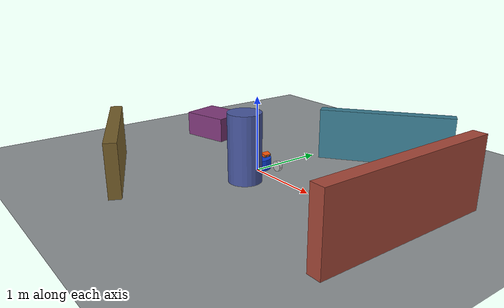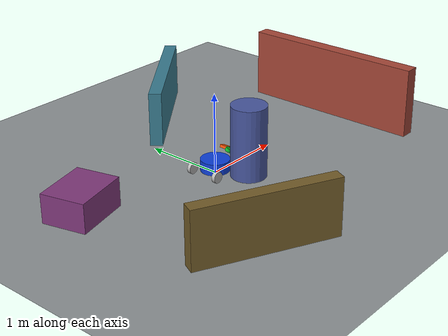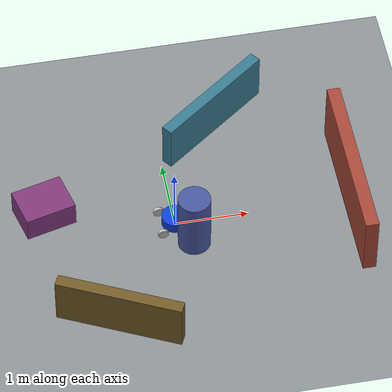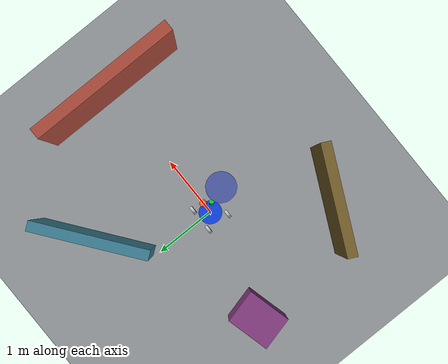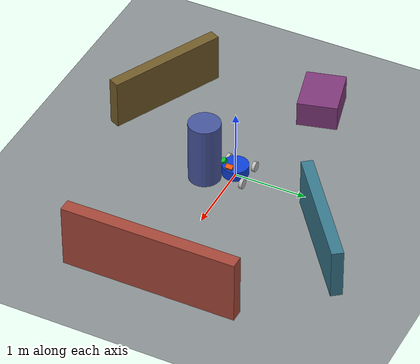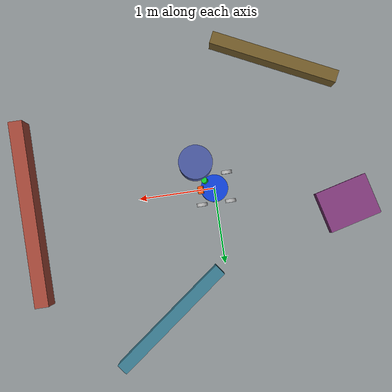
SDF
<?xml version="1.0" ?>
<sdf version="1.9">
  <world name="omni_harmonic_demo">
    <physics name="fast_step" type="ignored">
      <max_step_size>0.002</max_step_size>
      <real_time_factor>1.0</real_time_factor>
    </physics>

    <plugin filename="gz-sim-physics-system" name="gz::sim::systems::Physics"/>
    <plugin filename="gz-sim-user-commands-system" name="gz::sim::systems::UserCommands"/>
    <plugin filename="gz-sim-scene-broadcaster-system" name="gz::sim::systems::SceneBroadcaster"/>
    <plugin filename="gz-sim-sensors-system" name="gz::sim::systems::Sensors">
      <render_engine>ogre2</render_engine>
    </plugin>
    <plugin filename="gz-sim-imu-system" name="gz::sim::systems::Imu"/>

    <!-- Keep terrain readable on faces that are not reached by the sun. -->
    <scene>
      <ambient>0.45 0.45 0.45 1</ambient>
      <background>0.70 0.75 0.80 1</background>
      <shadows>true</shadows>
    </scene>

    <light type="directional" name="sun">
      <pose>0 0 8 0 0 0</pose>
      <cast_shadows>true</cast_shadows>
      <diffuse>0.9 0.9 0.85 1</diffuse>
      <specular>0.2 0.2 0.2 1</specular>
      <direction>-0.4 0.3 -0.9</direction>
    </light>

    <model name="ground_plane">
      <static>true</static>
      <link name="link">
        <collision name="collision">
          <geometry>
            <plane>
              <normal>0 0 1</normal>
              <size>18 18</size>
            </plane>
          </geometry>
          <surface>
            <friction>
              <ode>
                <mu>20</mu>
                <mu2>20</mu2>
              </ode>
            </friction>
          </surface>
        </collision>
        <visual name="visual">
          <geometry>
            <plane>
              <normal>0 0 1</normal>
              <size>18 18</size>
            </plane>
          </geometry>
          <material>
            <ambient>0.55 0.57 0.58 1</ambient>
            <diffuse>0.55 0.57 0.58 1</diffuse>
          </material>
        </visual>
      </link>
    </model>

    <model name="box_wall_front">
      <static>true</static>
      <pose>2.4 0 0.45 0 0 0</pose>
      <link name="link">
        <collision name="collision">
          <geometry><box><size>0.18 2.4 0.9</size></box></geometry>
        </collision>
        <visual name="visual">
          <geometry><box><size>0.18 2.4 0.9</size></box></geometry>
          <material>
            <ambient>0.65 0.28 0.22 1</ambient>
            <diffuse>0.65 0.28 0.22 1</diffuse>
          </material>
        </visual>
      </link>
    </model>

    <model name="box_wall_left">
      <static>true</static>
      <pose>0.8 1.6 0.35 0 0 0.65</pose>
      <link name="link">
        <collision name="collision">
          <geometry><box><size>1.8 0.16 0.7</size></box></geometry>
        </collision>
        <visual name="visual">
          <geometry><box><size>1.8 0.16 0.7</size></box></geometry>
          <material>
            <ambient>0.22 0.48 0.56 1</ambient>
            <diffuse>0.22 0.48 0.56 1</diffuse>
          </material>
        </visual>
      </link>
    </model>

    <model name="box_wall_right">
      <static>true</static>
      <pose>-1.0 -1.55 0.35 0 0 -0.45</pose>
      <link name="link">
        <collision name="collision">
          <geometry><box><size>1.7 0.16 0.7</size></box></geometry>
        </collision>
        <visual name="visual">
          <geometry><box><size>1.7 0.16 0.7</size></box></geometry>
          <material>
            <ambient>0.45 0.36 0.16 1</ambient>
            <diffuse>0.45 0.36 0.16 1</diffuse>
          </material>
        </visual>
      </link>
    </model>

    <model name="center_column">
      <static>true</static>
      <pose>0.2 -0.35 0.45 0 0 0</pose>
      <link name="link">
        <collision name="collision">
          <geometry><cylinder><radius>0.22</radius><length>0.9</length></cylinder></geometry>
        </collision>
        <visual name="visual">
          <geometry><cylinder><radius>0.22</radius><length>0.9</length></cylinder></geometry>
          <material>
            <ambient>0.28 0.34 0.62 1</ambient>
            <diffuse>0.28 0.34 0.62 1</diffuse>
          </material>
        </visual>
      </link>
    </model>

    <model name="low_box_obstacle">
      <static>true</static>
      <pose>-1.7 0.45 0.18 0 0 0.25</pose>
      <link name="link">
        <collision name="collision">
          <geometry><box><size>0.70 0.55 0.36</size></box></geometry>
        </collision>
        <visual name="visual">
          <geometry><box><size>0.70 0.55 0.36</size></box></geometry>
          <material>
            <ambient>0.50 0.22 0.48 1</ambient>
            <diffuse>0.50 0.22 0.48 1</diffuse>
          </material>
        </visual>
      </link>
    </model>

    <model name="omni_base" xmlns:gz="http://gazebosim.org/schema">
      <pose>0 0 0.11 0 0 0</pose>

      <link name="base_link">
        <inertial>
          <mass>18.0</mass>
          <inertia>
            <ixx>0.176904</ixx>
            <iyy>0.176904</iyy>
            <izz>0.2916</izz>
          </inertia>
        </inertial>
        <collision name="collision">
          <!-- Match the reusable model's ramp-friendly belly clearance. -->
          <geometry><cylinder><radius>0.18</radius><length>0.10</length></cylinder></geometry>
        </collision>
        <visual name="body">
          <geometry><cylinder><radius>0.18</radius><length>0.144</length></cylinder></geometry>
          <material>
            <ambient>0.04 0.18 0.55 1</ambient>
            <diffuse>0.05 0.25 0.85 1</diffuse>
          </material>
        </visual>
      </link>

      <!-- Gazebo camera +X faces forward and pitches 18 degrees downward. -->
      <link name="oakd_camera_link">
        <pose>0.18 0 0.16 0 0.31415926536 0</pose>
        <inertial>
          <mass>0.1</mass>
          <inertia>
            <ixx>0.0002</ixx>
            <iyy>0.0002</iyy>
            <izz>0.0002</izz>
          </inertia>
        </inertial>
        <visual name="camera_body">
          <geometry><box><size>0.07 0.10 0.035</size></box></geometry>
          <material>
            <ambient>0.55 0.15 0.01 1</ambient>
            <diffuse>0.95 0.32 0.03 1</diffuse>
          </material>
        </visual>
        <visual name="left_lens">
          <pose>0.038 0.028 0 0 0 0</pose>
          <geometry><box><size>0.008 0.022 0.022</size></box></geometry>
          <material>
            <ambient>0.01 0.01 0.015 1</ambient>
            <diffuse>0.01 0.01 0.015 1</diffuse>
          </material>
        </visual>
        <visual name="right_lens">
          <pose>0.038 -0.028 0 0 0 0</pose>
          <geometry><box><size>0.008 0.022 0.022</size></box></geometry>
          <material>
            <ambient>0.01 0.01 0.015 1</ambient>
            <diffuse>0.01 0.01 0.015 1</diffuse>
          </material>
        </visual>
        <sensor name="oakd_imu" type="imu">
          <always_on>true</always_on>
          <update_rate>200</update_rate>
          <topic>/oakd/imu/raw</topic>
          <gz_frame_id>oakd_imu_link</gz_frame_id>
        </sensor>
        <sensor name="oakd_rgbd" type="rgbd_camera">
          <always_on>true</always_on>
          <update_rate>15</update_rate>
          <topic>rgbd_camera</topic>
          <camera>
            <horizontal_fov>1.21</horizontal_fov>
            <image>
              <width>640</width>
              <height>400</height>
            </image>
            <clip>
              <near>0.15</near>
              <far>8.0</far>
            </clip>
            <optical_frame_id>oakd_camera_optical_frame</optical_frame_id>
          </camera>
        </sensor>
      </link>

      <joint name="oakd_fixed_joint" type="fixed">
        <parent>base_link</parent>
        <child>oakd_camera_link</child>
      </joint>

      <link name="mid360_link">
        <pose relative_to="base_link">0.113137085 -0.113137085 0.18 0.5235987756 0 0.7853981634</pose>
        <inertial>
          <mass>0.265</mass>
          <inertia>
            <ixx>0.00035</ixx>
            <iyy>0.00035</iyy>
            <izz>0.00035</izz>
          </inertia>
        </inertial>
        <visual name="body">
          <geometry><cylinder><radius>0.04</radius><length>0.04</length></cylinder></geometry>
          <material>
            <ambient>0.02 0.38 0.08 1</ambient>
            <diffuse>0.04 0.75 0.16 1</diffuse>
          </material>
        </visual>
        <sensor name="mid360_imu" type="imu">
          <always_on>true</always_on>
          <update_rate>200</update_rate>
          <topic>/mid360/imu</topic>
          <gz_frame_id>mid360_link</gz_frame_id>
        </sensor>
        <sensor name="mid360_lidar" type="gpu_lidar">
          <always_on>true</always_on>
          <visualize>false</visualize>
          <update_rate>20</update_rate>
          <topic>/mid360</topic>
          <gz_frame_id>mid360_link</gz_frame_id>
          <lidar>
            <scan>
              <horizontal>
                <samples>1875</samples>
                <resolution>1</resolution>
                <min_angle>0</min_angle>
                <max_angle>6.2831853072</max_angle>
              </horizontal>
              <vertical>
                <samples>32</samples>
                <resolution>1</resolution>
                <min_angle>-0.1221730476</min_angle>
                <max_angle>0.9075712110</max_angle>
              </vertical>
            </scan>
            <range>
              <min>0.10</min>
              <max>40.0</max>
              <resolution>0.01</resolution>
            </range>
            <noise>
              <type>gaussian</type>
              <mean>0</mean>
              <stddev>0.01</stddev>
            </noise>
          </lidar>
        </sensor>
      </link>
      <joint name="mid360_fixed_joint" type="fixed">
        <parent>base_link</parent>
        <child>mid360_link</child>
      </joint>

      <link name="front_left_wheel">
        <pose>0.19 0.19 -0.04 -1.5707 0 0</pose>
        <inertial><mass>0.8</mass><inertia><ixx>0.002</ixx><iyy>0.002</iyy><izz>0.001</izz></inertia></inertial>
        <collision name="collision">
          <geometry><sphere><radius>0.07</radius></sphere></geometry>
          <surface><friction><ode><mu>2.0</mu><mu2>0.6</mu2><fdir1 gz:expressed_in="base_link">1 -1 0</fdir1></ode></friction></surface>
        </collision>
        <visual name="visual"><geometry><cylinder><radius>0.07</radius><length>0.045</length></cylinder></geometry></visual>
      </link>

      <link name="front_right_wheel">
        <pose>0.19 -0.19 -0.04 -1.5707 0 0</pose>
        <inertial><mass>0.8</mass><inertia><ixx>0.002</ixx><iyy>0.002</iyy><izz>0.001</izz></inertia></inertial>
        <collision name="collision">
          <geometry><sphere><radius>0.07</radius></sphere></geometry>
          <surface><friction><ode><mu>2.0</mu><mu2>0.6</mu2><fdir1 gz:expressed_in="base_link">1 1 0</fdir1></ode></friction></surface>
        </collision>
        <visual name="visual"><geometry><cylinder><radius>0.07</radius><length>0.045</length></cylinder></geometry></visual>
      </link>

      <link name="rear_left_wheel">
        <pose>-0.19 0.19 -0.04 -1.5707 0 0</pose>
        <inertial><mass>0.8</mass><inertia><ixx>0.002</ixx><iyy>0.002</iyy><izz>0.001</izz></inertia></inertial>
        <collision name="collision">
          <geometry><sphere><radius>0.07</radius></sphere></geometry>
          <surface><friction><ode><mu>2.0</mu><mu2>0.6</mu2><fdir1 gz:expressed_in="base_link">1 1 0</fdir1></ode></friction></surface>
        </collision>
        <visual name="visual"><geometry><cylinder><radius>0.07</radius><length>0.045</length></cylinder></geometry></visual>
      </link>

      <link name="rear_right_wheel">
        <pose>-0.19 -0.19 -0.04 -1.5707 0 0</pose>
        <inertial><mass>0.8</mass><inertia><ixx>0.002</ixx><iyy>0.002</iyy><izz>0.001</izz></inertia></inertial>
        <collision name="collision">
          <geometry><sphere><radius>0.07</radius></sphere></geometry>
          <surface><friction><ode><mu>2.0</mu><mu2>0.6</mu2><fdir1 gz:expressed_in="base_link">1 -1 0</fdir1></ode></friction></surface>
        </collision>
        <visual name="visual"><geometry><cylinder><radius>0.07</radius><length>0.045</length></cylinder></geometry></visual>
      </link>

      <joint name="front_left_wheel_joint" type="revolute">
        <parent>base_link</parent>
        <child>front_left_wheel</child>
        <axis><xyz>0 0 1</xyz><limit><lower>-1e16</lower><upper>1e16</upper></limit></axis>
      </joint>
      <joint name="front_right_wheel_joint" type="revolute">
        <parent>base_link</parent>
        <child>front_right_wheel</child>
        <axis><xyz>0 0 1</xyz><limit><lower>-1e16</lower><upper>1e16</upper></limit></axis>
      </joint>
      <joint name="rear_left_wheel_joint" type="revolute">
        <parent>base_link</parent>
        <child>rear_left_wheel</child>
        <axis><xyz>0 0 1</xyz><limit><lower>-1e16</lower><upper>1e16</upper></limit></axis>
      </joint>
      <joint name="rear_right_wheel_joint" type="revolute">
        <parent>base_link</parent>
        <child>rear_right_wheel</child>
        <axis><xyz>0 0 1</xyz><limit><lower>-1e16</lower><upper>1e16</upper></limit></axis>
      </joint>

      <plugin filename="gz-sim-mecanum-drive-system" name="gz::sim::systems::MecanumDrive">
        <front_left_joint>front_left_wheel_joint</front_left_joint>
        <front_right_joint>front_right_wheel_joint</front_right_joint>
        <back_left_joint>rear_left_wheel_joint</back_left_joint>
        <back_right_joint>rear_right_wheel_joint</back_right_joint>
        <wheel_separation>0.38</wheel_separation>
        <wheelbase>0.38</wheelbase>
        <wheel_radius>0.07</wheel_radius>
        <topic>/cmd_vel</topic>
        <odom_topic>/model/omni_base/wheel_odometry</odom_topic>
        <tf_topic>/model/omni_base/wheel_tf</tf_topic>
        <frame_id>odom</frame_id>
        <child_frame_id>base_link</child_frame_id>
        <odom_publish_frequency>50</odom_publish_frequency>
        <min_acceleration>-1.5</min_acceleration>
        <max_acceleration>1.5</max_acceleration>
      </plugin>

      <plugin filename="gz-sim-odometry-publisher-system" name="gz::sim::systems::OdometryPublisher">
        <odom_frame>odom</odom_frame>
        <robot_base_frame>base_link</robot_base_frame>
        <dimensions>2</dimensions>
        <odom_topic>/visual_slam/tracking/odometry</odom_topic>
        <tf_topic>/tf</tf_topic>
        <odom_publish_frequency>50</odom_publish_frequency>
      </plugin>

      <plugin filename="gz-sim-joint-state-publisher-system" name="gz::sim::systems::JointStatePublisher">
        <joint_name>front_left_wheel_joint</joint_name>
        <joint_name>front_right_wheel_joint</joint_name>
        <joint_name>rear_left_wheel_joint</joint_name>
        <joint_name>rear_right_wheel_joint</joint_name>
        <topic>/joint_states</topic>
        <update_rate>30</update_rate>
      </plugin>
    </model>
  </world>
</sdf>
